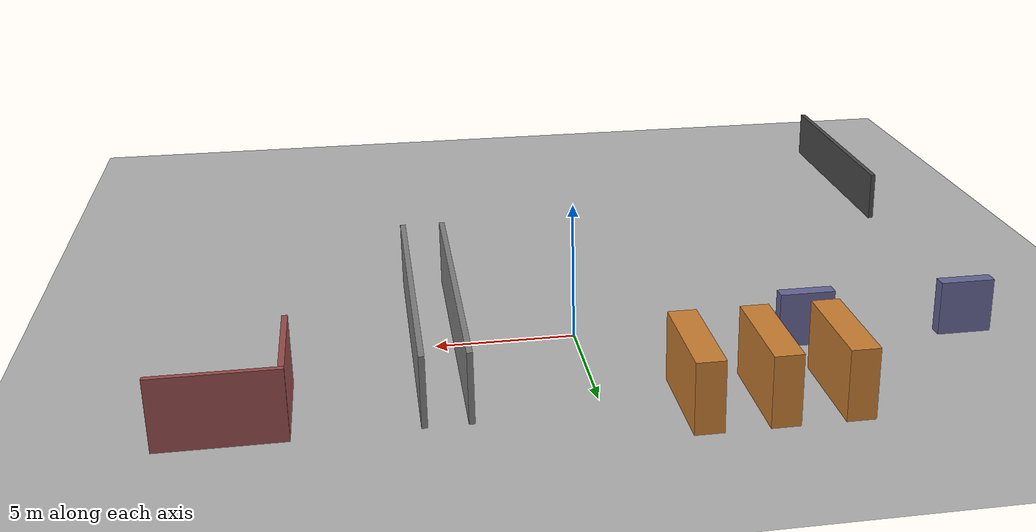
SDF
<sdf version="1.8">
 <world name="warehouse_rai">
  <physics name="1ms" type="ignored">
   <max_step_size>0.001</max_step_size>
   <real_time_factor>1.0</real_time_factor>
  </physics>
  <plugin filename="ignition-gazebo-physics-system" name="ignition::gazebo::systems::Physics"/>
  <plugin filename="ignition-gazebo-user-commands-system" name="ignition::gazebo::systems::UserCommands"/>
  <plugin filename="ignition-gazebo-scene-broadcaster-system" name="ignition::gazebo::systems::SceneBroadcaster"/>
  <plugin filename="ignition-gazebo-sensors-system" name="ignition::gazebo::systems::Sensors">
   <render_engine>ogre2</render_engine>
  </plugin>
  <plugin filename="ignition-gazebo-contact-system" name="ignition::gazebo::systems::Contact"/>
  <light type="directional" name="sun">
   <pose>0 0 15 0 0 0</pose>
   <diffuse>0.9 0.9 0.9 1</diffuse>
   <specular>0.2 0.2 0.2 1</specular>
   <attenuation>
    <range>1000</range>
    <constant>0.9</constant>
    <linear>0.01</linear>
    <quadratic>0.001</quadratic>
   </attenuation>
   <direction>-0.5 0.1 -0.9</direction>
  </light>
  <model name="ground_plane">
   <static>true</static>
   <link name="link">
    <collision name="collision">
     <geometry><plane><normal>0 0 1</normal><size>100 100</size></plane></geometry>
     <surface><friction><ode><mu>100</mu><mu2>50</mu2></ode></friction></surface>
    </collision>
    <visual name="visual">
     <geometry><plane><normal>0 0 1</normal><size>100 100</size></plane></geometry>
     <material>
      <ambient>0.6 0.6 0.6 1</ambient>
      <diffuse>0.7 0.7 0.7 1</diffuse>
      <specular>0.1 0.1 0.1 1</specular>
     </material>
    </visual>
   </link>
  </model>
  <model name="s1_outer_boundary">
   <static>true</static>
   <pose>-15 -15 1 0 0 0</pose>
   <link name="link">
    <collision name="collision"><geometry><box><size>0.2 10 2</size></box></geometry></collision>
    <visual name="visual">
     <geometry><box><size>0.2 10 2</size></box></geometry>
     <material><ambient>0.2 0.2 0.2 1</ambient><diffuse>0.3 0.3 0.3 1</diffuse></material>
    </visual>
   </link>
  </model>
  <model name="s2_left_wall">
   <static>true</static>
   <pose>4.25 0 1.25 0 0 0</pose>
   <link name="link">
    <collision name="collision"><geometry><box><size>0.2 12.0 2.5</size></box></geometry></collision>
    <visual name="visual">
     <geometry><box><size>0.2 12.0 2.5</size></box></geometry>
     <material><ambient>0.4 0.4 0.4 1</ambient><diffuse>0.5 0.5 0.5 1</diffuse></material>
    </visual>
   </link>
  </model>
  <model name="s2_right_wall">
   <static>true</static>
   <pose>5.75 0 1.25 0 0 0</pose>
   <link name="link">
    <collision name="collision"><geometry><box><size>0.2 12.0 2.5</size></box></geometry></collision>
    <visual name="visual">
     <geometry><box><size>0.2 12.0 2.5</size></box></geometry>
     <material><ambient>0.4 0.4 0.4 1</ambient><diffuse>0.5 0.5 0.5 1</diffuse></material>
    </visual>
   </link>
  </model>
  <model name="s3_shelf_1">
   <static>true</static>
   <pose>-8 6 1.25 0 0 0</pose>
   <link name="link">
    <collision name="collision"><geometry><box><size>1.0 4.0 2.5</size></box></geometry></collision>
    <visual name="visual">
     <geometry><box><size>1.0 4.0 2.5</size></box></geometry>
     <material><ambient>0.7 0.4 0.1 1</ambient><diffuse>0.8 0.5 0.2 1</diffuse></material>
    </visual>
   </link>
  </model>
  <model name="s3_shelf_2">
   <static>true</static>
   <pose>-5.5 6 1.25 0 0 0</pose>
   <link name="link">
    <collision name="collision"><geometry><box><size>1.0 4.0 2.5</size></box></geometry></collision>
    <visual name="visual">
     <geometry><box><size>1.0 4.0 2.5</size></box></geometry>
     <material><ambient>0.7 0.4 0.1 1</ambient><diffuse>0.8 0.5 0.2 1</diffuse></material>
    </visual>
   </link>
  </model>
  <model name="s3_shelf_3">
   <static>true</static>
   <pose>-3 6 1.25 0 0 0</pose>
   <link name="link">
    <collision name="collision"><geometry><box><size>1.0 4.0 2.5</size></box></geometry></collision>
    <visual name="visual">
     <geometry><box><size>1.0 4.0 2.5</size></box></geometry>
     <material><ambient>0.7 0.4 0.1 1</ambient><diffuse>0.8 0.5 0.2 1</diffuse></material>
    </visual>
   </link>
  </model>
  <model name="s4_barrier_left">
   <static>true</static>
   <pose>-14 2 1 0 0 0</pose>
   <link name="link">
    <collision name="collision"><geometry><box><size>2.0 0.5 2</size></box></geometry></collision>
    <visual name="visual">
     <geometry><box><size>2.0 0.5 2</size></box></geometry>
     <material><ambient>0.3 0.3 0.5 1</ambient><diffuse>0.4 0.4 0.6 1</diffuse></material>
    </visual>
   </link>
  </model>
  <model name="s4_barrier_right">
   <static>true</static>
   <pose>-8 2 1 0 0 0</pose>
   <link name="link">
    <collision name="collision"><geometry><box><size>2.0 0.5 2</size></box></geometry></collision>
    <visual name="visual">
     <geometry><box><size>2.0 0.5 2</size></box></geometry>
     <material><ambient>0.3 0.3 0.5 1</ambient><diffuse>0.4 0.4 0.6 1</diffuse></material>
    </visual>
   </link>
  </model>
  <model name="s5_occluding_wall_1">
   <static>true</static>
   <pose>10.0 4.0 1.25 0 0 0</pose>
   <link name="link">
    <collision name="collision"><geometry><box><size>0.2 4.0 2.5</size></box></geometry></collision>
    <visual name="visual">
     <geometry><box><size>0.2 4.0 2.5</size></box></geometry>
     <material><ambient>0.5 0.2 0.2 1</ambient><diffuse>0.6 0.3 0.3 1</diffuse></material>
    </visual>
   </link>
  </model>
  <model name="s5_occluding_wall_2">
   <static>true</static>
   <pose>12.0 6.0 1.25 0 0 0</pose>
   <link name="link">
    <collision name="collision"><geometry><box><size>4.2 0.2 2.5</size></box></geometry></collision>
    <visual name="visual">
     <geometry><box><size>4.2 0.2 2.5</size></box></geometry>
     <material><ambient>0.5 0.2 0.2 1</ambient><diffuse>0.6 0.3 0.3 1</diffuse></material>
    </visual>
   </link>
  </model>
 </world>
</sdf>
